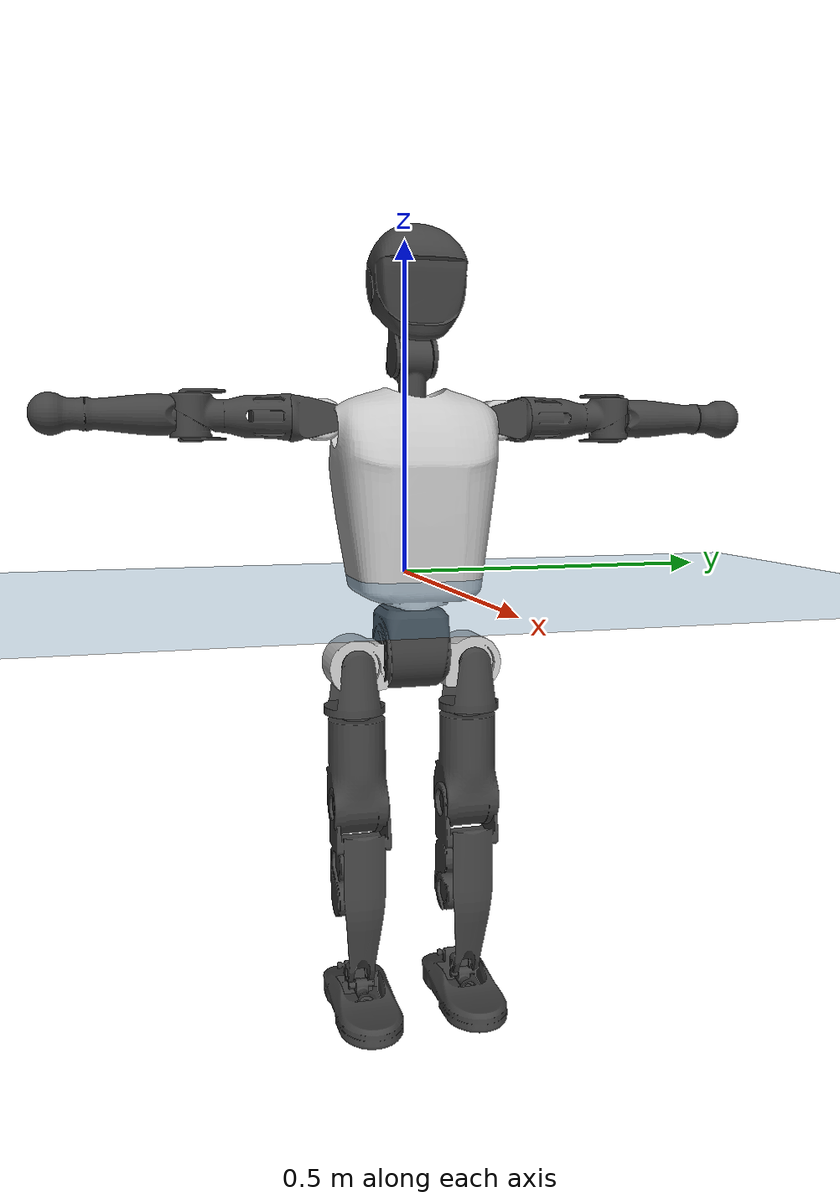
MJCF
<mujoco model="T1">
  <compiler angle="radian" assetdir="assets" balanceinertia="true" inertiafromgeom="false"/>

  <option timestep="0.005" density="1.2" viscosity="2e-05"/>

  <size nkey="1"/>

  <visual>
    <quality shadowsize="8192"/>
    <map shadowclip="0.5"/>
  </visual>

  <default>
    <default class="/">
      <joint armature="0.01" damping="0.01" frictionloss="0.1"/>
      <geom contype="0" conaffinity="0" group="1" solref="-1000 -80"/>
      <site size="0.01 0.005 0.005" group="5"/>
      <general forcelimited="true" biastype="affine" gainprm="25" biasprm="0 -25 -0.6"/>
      <default class="t1">
        <geom rgba="0.25 0.25 0.25 1"/>
        <default class="visual">
          <geom type="mesh" group="2"/>
        </default>
        <default class="collision">
          <geom group="3"/>
        </default>
        <default class="foot">
          <geom size="0.1115 0.05 0.015" type="box" condim="6" group="4" priority="1" solimp="0.015 1 0.015"/>
        </default>
        <default class="reward_collision_sphere">
          <geom group="5" rgba="1 0 0 1"/>
        </default>
      </default>
    </default>
  </default>

  <asset>
    <texture type="skybox" colorspace="auto" name="//unnamed_texture_0" builtin="gradient" rgb1="0.95 0.95 0.95" rgb2="0.95 0.95 0.95" width="100" height="600"/>
    <texture type="2d" colorspace="auto" name="texplane" builtin="checker" rgb1="0.345 0.575 0.748" rgb2="0.345 0.575 0.748" markrgb="1 1 1" width="512" height="512"/>
    <material name="MatPlane" class="/" texture="texplane" texuniform="true" texrepeat="2 2" specular="0.9"/>
    <mesh name="Trunk" class="/" file="Trunk.stl"/>
    <mesh name="H1" class="/" file="H1.stl"/>
    <mesh name="H2" class="/" file="H2.stl"/>
    <mesh name="AL1" class="/" file="AL1.stl"/>
    <mesh name="AL2" class="/" file="AL2.stl"/>
    <mesh name="AL3" class="/" file="AL3.stl"/>
    <mesh name="left_hand_link" class="/" file="left_hand_link.stl"/>
    <mesh name="AR1" class="/" file="AR1.stl"/>
    <mesh name="AR2" class="/" file="AR2.stl"/>
    <mesh name="AR3" class="/" file="AR3.stl"/>
    <mesh name="right_hand_link" class="/" file="right_hand_link.stl"/>
    <mesh name="Waist" class="/" file="Waist.stl"/>
    <mesh name="Hip_Pitch_Left" class="/" file="Hip_Pitch_Left.stl"/>
    <mesh name="Hip_Roll_Left" class="/" file="Hip_Roll_Left.stl"/>
    <mesh name="Hip_Yaw_Left" class="/" file="Hip_Yaw_Left.stl"/>
    <mesh name="Shank_Left" class="/" file="Shank_Left.stl"/>
    <mesh name="Ankle_Cross_Left" class="/" file="Ankle_Cross_Left.stl"/>
    <mesh name="left_foot_link" class="/" file="left_foot_link.stl"/>
    <mesh name="Hip_Pitch_Right" class="/" file="Hip_Pitch_Right.stl"/>
    <mesh name="Hip_Roll_Right" class="/" file="Hip_Roll_Right.stl"/>
    <mesh name="Hip_Yaw_Right" class="/" file="Hip_Yaw_Right.stl"/>
    <mesh name="Shank_Right" class="/" file="Shank_Right.stl"/>
    <mesh name="Ankle_Cross_Right" class="/" file="Ankle_Cross_Right.stl"/>
    <mesh name="right_foot_link" class="/" file="right_foot_link.stl"/>
  </asset>

  <worldbody>
    <geom name="floor" class="/" size="100 100 0.125" type="plane" group="0" material="MatPlane"/>
    <light name="toplight_shadow" class="/" pos="0 0 5" dir="0.0990148 0.0990148 -0.990148" type="directional" ambient="0.04 0.04 0.04" diffuse="0.55 0.55 0.55" specular="0.12 0.12 0.12"/>
    <light name="toplight_fill" class="/" pos="0 0 5" dir="0.0990148 0.0990148 -0.990148" type="directional" castshadow="false" ambient="0.04 0.04 0.04" diffuse="0.3 0.3 0.3" specular="0.08 0.08 0.08"/>
    <body name="trunk" childclass="t1" pos="0.000680408 -0.000739772 0.00059614" quat="0.999999 -3.99926e-05 -0.00115779 -0.000192246">
      <inertial pos="0.0272919 6.47834e-05 0.109334" quat="0.999899 0.000734592 -0.00649964 0.0126507" mass="5.86541" diaginertia="0.0029785 0.0352326 0.0713135"/>
      <joint name="//unnamed_joint_0" type="free" armature="0" damping="0" frictionloss="0"/>
      <geom name="//unnamed_geom_1" class="visual" rgba="0.76 0.76 0.76 1" mesh="Trunk"/>
      <geom name="//unnamed_geom_2" class="collision" size="0.0604453 0.0805938 0.120891" pos="0.0303023 0 0.126777" type="box"/>
      <geom name="//unnamed_geom_3" class="reward_collision_sphere" size="0.0926829" pos="0.0303023 0 0.105648"/>
      <geom name="//unnamed_geom_4" class="reward_collision_sphere" size="0.0120891" pos="0.0303023 0.0727853 0"/>
      <geom name="//unnamed_geom_5" class="reward_collision_sphere" size="0.0120891" pos="0.0303023 -0.0727853 0"/>
      <geom name="//unnamed_geom_6" class="reward_collision_sphere" size="0.0120891" pos="0.0303023 0.0916239 0.190166"/>
      <geom name="//unnamed_geom_7" class="reward_collision_sphere" size="0.0120891" pos="0.0303023 -0.0916239 0.190166"/>
      <site name="imu" pos="0.0133378 -0.0111408 0.000161712" size="0.00805938"/>
      <camera name="track" pos="0 -1.7126 0" quat="0.707107 0.707107 0 0" mode="trackcom"/>
      <camera name="ego_camera" pos="0.0616147 0 0.44372" quat="-0.5 -0.5 0.5 0.5"/>
      <body name="H1" pos="0.0354681 0.00290867 0.260565" quat="0.999999 0.00034661 -0.000669117 0.00107852">
        <inertial pos="-0.0016009 9.98985e-05 0.0586709" quat="0.759608 -0.0254978 0.00491866 0.649863" mass="0.231884" diaginertia="7.99008e-06 0.000107953 0.000200462"/>
        <joint name="AAHead_yaw" pos="0 0 0" axis="-0.0112187 -0.00227546 0.999934" range="-1.57805 1.61985" armature="0.00741371" damping="0.0179149" frictionloss="0.0866972"/>
        <geom name="//unnamed_geom_8" class="visual" mesh="H1"/>
        <body name="H2" pos="0.00185746 0.000156745 0.0646201" quat="1 -0.000261491 -0.000169549 0.000175011">
          <inertial pos="0.0045399 0.00448401 0.104522" quat="0.987315 0.10421 -0.0854535 -0.083944" mass="0.316356" diaginertia="6.27514e-05 0.000849096 0.00224108"/>
          <joint name="Head_pitch" pos="0 0 0" axis="0.000158718 -1 0.000253041" range="-1.16934 0.357123" armature="0.00823405" damping="0.012459" frictionloss="0.080323"/>
          <geom name="//unnamed_geom_9" class="visual" mesh="H2"/>
          <geom name="//unnamed_geom_10" class="collision" size="0.064475" pos="0.00505039 0 0.116212"/>
          <geom name="//unnamed_geom_11" class="reward_collision_sphere" size="0.0725344" pos="0.0101008 0 0.105648"/>
        </body>
      </body>
      <body name="AL1" pos="0.0321349 0.088735 0.232747" quat="1 -0.000103332 0.000443883 0.000178149">
        <inertial pos="0.00293936 0.0358035 0.000411531" quat="0.497362 0.498116 -0.513785 0.490445" mass="0.289295" diaginertia="4.64412e-05 0.000617388 0.000394604"/>
        <joint name="Left_Shoulder_Pitch" pos="0 0 0" axis="-0.00229892 0.999996 -0.00185794" range="-3.26517 1.20767" armature="0.00837634" damping="0.00915015" frictionloss="0.0788421"/>
        <geom name="//unnamed_geom_12" class="visual" rgba="0.76 0.76 0.76 1" mesh="AL1"/>
        <body name="AL2" pos="0.00399657 0.0388613 0.000852582" quat="0.999999 0.0010715 -0.000673301 1.73818e-05">
          <inertial pos="0.00321157 0.029701 0.00161302" quat="0.487683 0.511744 -0.488424 0.511592" mass="0.0816875" diaginertia="1.26993e-05 0.000147292 0.000222592"/>
          <joint name="Left_Shoulder_Roll" pos="0 0 0" axis="-0.999946 0.00788303 -0.00684168" range="-1.56002 1.77217" armature="0.00820366" damping="0" frictionloss="0.0741558"/>
          <geom name="//unnamed_geom_13" class="visual" mesh="AL2"/>
          <body name="AL3" pos="-0.00256931 0.052077 0.00222606" quat="1 -0.000378212 0.000373922 -8.87977e-05">
            <inertial pos="0.000995556 0.0756976 -0.000742262" quat="0.706086 0.708119 0.00218924 -0.00232782" mass="0.536566" diaginertia="0.000431721 0.00609056 0.00084579"/>
            <joint name="Left_Elbow_Pitch" pos="0 0 0" axis="0.00793185 -0.999954 0.00540365" range="-2.29771 2.24743" armature="0.00867683" damping="0" frictionloss="0.082329"/>
            <geom name="//unnamed_geom_14" class="visual" mesh="AL3"/>
            <geom name="//unnamed_geom_15" class="collision" size="0.0241781 0.0604453" pos="0 0.0428149 0" quat="0.707105 0.707108 0 0" type="cylinder"/>
            <geom name="//unnamed_geom_16" class="reward_collision_sphere" size="0.0290138"/>
            <body name="left_hand_link" pos="0.00303652 0.12687 0.000506777" quat="1 0.00012361 1.42848e-05 5.14022e-06">
              <inertial pos="-0.00422608 0.0950094 -0.00156566" quat="0.71591 0.698178 0.001912 0.00414143" mass="0.16659" diaginertia="0.000261924 0.00366734 0.000284647"/>
              <joint name="Left_Elbow_Yaw" pos="0 0 0" axis="0.00148179 0.00153553 0.999998" stiffness="0.00938392" range="-2.40853 -0.0218366" armature="0.00795721" damping="0.00868344" frictionloss="0.0784116"/>
              <geom name="//unnamed_geom_17" class="visual" mesh="left_hand_link"/>
              <geom name="//unnamed_geom_18" class="collision" size="0.0241781 0.0705196" pos="0 0.111319 0" quat="0.707105 0.707108 0 0" type="cylinder"/>
              <geom name="//unnamed_geom_19" class="reward_collision_sphere" size="0.0402969"/>
              <geom name="//unnamed_geom_20" class="reward_collision_sphere" size="0.0282078" pos="0 0.0941927 0"/>
              <geom name="//unnamed_geom_21" class="reward_collision_sphere" size="0.0282078" pos="0 0.184104 0"/>
            </body>
          </body>
        </body>
      </body>
      <body name="AR1" pos="0.0248326 -0.0888803 0.232232" quat="1 -0.000451813 0.000674386 -0.000488596">
        <inertial pos="0.00125054 -0.036162 0.0001635" quat="0.503676 0.49498 -0.504214 0.497064" mass="0.275304" diaginertia="4.37934e-05 0.000606162 0.000387392"/>
        <joint name="Right_Shoulder_Pitch" pos="0 0 0" axis="-0.00383715 -0.999982 0.00457218" range="-1.21784 3.36103" armature="0.0082149" damping="0.0212841" frictionloss="0.0752789"/>
        <geom name="//unnamed_geom_22" class="visual" rgba="0.76 0.76 0.76 1" mesh="AR1"/>
        <body name="AR2" pos="-0.00402323 -0.0375162 0.00205194" quat="1 -0.000196466 -2.30393e-05 -0.00074278">
          <inertial pos="0.000466291 -0.032894 0.00307609" quat="0.508795 0.488577 -0.509597 0.492678" mass="0.0836216" diaginertia="1.32477e-05 0.000166325 0.000240806"/>
          <joint name="Right_Shoulder_Roll" pos="0 0 0" axis="-0.999895 -0.0124166 0.00741658" stiffness="0.0123561" range="-1.80986 1.53253" armature="0.00879945" damping="0" frictionloss="0.0797755"/>
          <geom name="//unnamed_geom_23" class="visual" mesh="AR2"/>
          <body name="AR3" pos="-0.00321469 -0.0511771 0.00204551" quat="1 -0.000159653 3.44008e-05 -0.000322394">
            <inertial pos="0.00229398 -0.0707078 -8.21528e-05" quat="0.708977 0.705188 -0.00523994 -0.00577222" mass="0.529935" diaginertia="0.000406551 0.00585436 0.00078082"/>
            <joint name="Right_Elbow_Pitch" pos="0 0 0" axis="-0.00494862 0.999965 -0.0067013" stiffness="0.00598268" range="-2.26903 2.25221" armature="0.00836024" damping="0" frictionloss="0.0907101"/>
            <geom name="//unnamed_geom_24" class="visual" mesh="AR3"/>
            <geom name="//unnamed_geom_25" class="collision" size="0.0241781 0.0604453" pos="0 -0.0428149 0" quat="0.707105 0.707108 0 0" type="cylinder"/>
            <geom name="//unnamed_geom_26" class="reward_collision_sphere" size="0.0290138"/>
            <body name="right_hand_link" pos="0.000587219 -0.12464 0.00135872" quat="1 -1.9641e-05 -6.2091e-05 -0.000140374">
              <inertial pos="-0.000959594 -0.0960459 -0.000730197" quat="0.706361 0.707852 0.000236407 0.00014308" mass="0.168634" diaginertia="0.000269896 0.00373488 0.00026885"/>
              <joint name="Right_Elbow_Yaw" pos="0 0 0" axis="-0.000970274 -0.00597444 0.999982" range="0.0246323 2.38676" armature="0.00765879" damping="0" frictionloss="0.0887048"/>
              <geom name="//unnamed_geom_27" class="visual" mesh="right_hand_link"/>
              <geom name="//unnamed_geom_28" class="collision" size="0.0241781 0.0705196" pos="0 -0.111319 0" quat="0.707105 0.707108 0 0" type="cylinder"/>
              <geom name="//unnamed_geom_29" class="reward_collision_sphere" size="0.0402969"/>
              <geom name="//unnamed_geom_30" class="reward_collision_sphere" size="0.0282078" pos="0 -0.0941927 0"/>
              <geom name="//unnamed_geom_31" class="reward_collision_sphere" size="0.0282078" pos="0 -0.184104 0"/>
            </body>
          </body>
        </body>
      </body>
      <body name="Waist" pos="0.031087 0.00102485 -0.119045" quat="0.999999 -9.84722e-05 -0.000355037 -0.00115199">
        <inertial pos="-0.000930194 -0.00063717 0.00736882" quat="0.984521 -0.00286659 -0.175241 -0.00105839" mass="1.33164" diaginertia="0.000165919 0.00248807 0.0058642"/>
        <joint name="Waist" pos="0 0 0" axis="0.00119749 6.23443e-05 0.999999" range="-1.59192 1.54424" armature="0.00772066" damping="0.020749" frictionloss="0.0884654"/>
        <geom name="//unnamed_geom_32" class="visual" mesh="Waist"/>
        <body name="Hip_Pitch_Left" pos="0.000963862 0.0934354 -0.00253941" quat="1 -8.30381e-05 -9.51227e-05 0.000245265">
          <inertial pos="-0.000742526 -0.00571245 -0.0169595" quat="0.973588 0.227543 0.0184769 -0.00314016" mass="0.525754" diaginertia="5.79029e-05 0.000660652 0.00158679"/>
          <joint name="Left_Hip_Pitch" pos="0 0 0" axis="0.0039656 0.999862 -0.0161379" stiffness="0.00702096" range="-1.84997 1.57943" armature="0.00820772" damping="0.00313233" frictionloss="0.079025"/>
          <geom name="//unnamed_geom_33" class="visual" rgba="0.76 0.76 0.76 1" mesh="Hip_Pitch_Left"/>
          <body name="Hip_Roll_Left" pos="-0.00197032 0.00214178 -0.019998" quat="1 -1.12265e-05 -0.000817047 2.34088e-05">
            <inertial pos="0.00155443 -0.000241091 -0.0568919" quat="0.707055 -0.00603373 -0.00592263 0.707108" mass="0.211273" diaginertia="6.22727e-05 0.00072445 0.000723778"/>
            <joint name="Left_Hip_Roll" pos="0 0 0" axis="-0.999978 0.00431711 0.00496272" stiffness="0.00944325" range="-1.62191 0.172953" armature="0.00743014" damping="0.00382317" frictionloss="0.0712439"/>
            <geom name="//unnamed_geom_34" class="visual" mesh="Hip_Roll_Left"/>
            <geom name="//unnamed_geom_35" class="reward_collision_sphere" size="0.0443266"/>
            <body name="Hip_Yaw_Left" pos="0.00200603 -0.00272194 -0.0853565" quat="1 -0.000553374 -0.000617671 0.000428052">
              <inertial pos="-0.000651282 -0.0037227 -0.0969928" quat="0.694652 -0.0304392 -0.019402 0.71844" mass="1.10268" diaginertia="0.000795172 0.0113014 0.00334876"/>
              <joint name="Left_Hip_Yaw" pos="0 0 0" axis="0.0126479 0.0042347 -0.999911" stiffness="0.0150728" range="-1.06857 0.97537" armature="0.00808432" damping="0.0171445" frictionloss="0.0771179"/>
              <geom name="//unnamed_geom_36" class="visual" mesh="Hip_Yaw_Left"/>
              <geom name="//unnamed_geom_37" class="collision" size="0.0402969 0.064475" type="cylinder"/>
              <body name="Shank_Left" pos="-0.00340821 -0.00184472 -0.14447" quat="1 -0.000132932 -0.000197395 7.44482e-05">
                <inertial pos="0.000243611 0.00256198 -0.128723" quat="0.997148 0.0178503 -0.0248359 0.0689891" mass="0.890378" diaginertia="0.00113897 0.0150479 0.00245509"/>
                <joint name="Left_Knee_Pitch" pos="0 0 0" axis="-0.00144526 0.999981 0.00590855" range="-0.019018 2.33622" armature="0.00804182" damping="0.0218329" frictionloss="0.0695303"/>
                <geom name="//unnamed_geom_38" class="visual" mesh="Shank_Left"/>
                <geom name="//unnamed_geom_39" class="collision" size="0.0402969 0.0604453" pos="0 0 -0.126777" type="cylinder"/>
                <geom name="//unnamed_geom_40" class="reward_collision_sphere" size="0.052386"/>
                <body name="Ankle_Cross_Left" pos="0.00112919 -0.00285731 -0.29353" quat="1 0.000469937 0.000264061 0.000301864">
                  <inertial pos="-0.00258457 0.0022789 -0.00992618" quat="0.448033 0.547786 0.547566 0.446506" mass="0.0388829" diaginertia="9.95216e-07 1.197e-05 1.56812e-05"/>
                  <joint name="Left_Ankle_Pitch" pos="0 0 0" axis="0.00143882 0.999999 -0.000160441" range="-0.860201 0.339184" armature="0.00666838" damping="0" frictionloss="0.0722777"/>
                  <geom name="//unnamed_geom_41" class="visual" mesh="Ankle_Cross_Left"/>
                  <body name="left_foot_link" pos="-0.00312715 0.00183577 -0.0150083" quat="1 -5.71751e-05 -1.18483e-05 0.000120233">
                    <inertial pos="0.00264016 0.000547261 -0.00942984" quat="-0.00585045 0.624997 -0.00590742 0.780583" mass="0.354356" diaginertia="9.03529e-05 0.00115522 0.00297738"/>
                    <joint name="Left_Ankle_Roll" pos="0 0 0" axis="-1 -0.000336918 0.000262136" stiffness="0.0106138" range="-0.413704 0.404242" armature="0.00826964" damping="0.0280936" frictionloss="0.0722972"/>
                    <geom name="//unnamed_geom_42" class="visual" mesh="left_foot_link"/>
                    <geom name="left_foot" class="foot" size="0.0908604 0.0453022 0.0114238" pos="0.00505039 0 -0.0158472"/>
                    <geom name="//unnamed_geom_44" class="reward_collision_sphere" size="0.0419088" pos="0.00505039 0 -0.0158472"/>
                    <geom name="//unnamed_geom_45" class="reward_collision_sphere" size="0.0241781" pos="0.0479787 -0.0196948 -0.0158472"/>
                    <geom name="//unnamed_geom_46" class="reward_collision_sphere" size="0.0241781" pos="-0.0353527 -0.0196948 -0.0158472"/>
                    <site name="left_foot" class="foot" pos="0.00505039 0 -0.0158472" size="0.00805938"/>
                  </body>
                </body>
              </body>
            </body>
          </body>
        </body>
        <body name="Hip_Pitch_Right" pos="-0.00141553 -0.0900377 -0.000835984" quat="1 -9.27396e-06 -8.55575e-06 -7.91555e-06">
          <inertial pos="-0.00164067 0.00596729 -0.0177726" quat="0.974948 -0.221615 0.0117382 -0.0149842" mass="0.54483" diaginertia="6.14109e-05 0.000653473 0.00168165"/>
          <joint name="Right_Hip_Pitch" pos="0 0 0" axis="-0.00915341 -0.999947 -0.00462389" range="-1.48467 1.74047" armature="0.0084558" damping="0.00362478" frictionloss="0.0905106"/>
          <geom name="//unnamed_geom_47" class="visual" rgba="0.76 0.76 0.76 1" mesh="Hip_Pitch_Right"/>
          <body name="Hip_Roll_Right" pos="-0.00300157 0.000693253 -0.018557" quat="1 5.24269e-06 0.000126387 0.00015721">
            <inertial pos="-0.00152607 9.30733e-05 -0.0573659" quat="0.697958 -0.0032281 -0.00694821 0.716097" mass="0.203612" diaginertia="5.81563e-05 0.000683733 0.000664972"/>
            <joint name="Right_Hip_Roll" pos="0 0 0" axis="-0.999913 0.0131582 -6.30637e-05" range="-0.210734 1.51638" armature="0.00764482" damping="0.0173091" frictionloss="0.090468"/>
            <geom name="//unnamed_geom_48" class="visual" mesh="Hip_Roll_Right"/>
            <geom name="//unnamed_geom_49" class="reward_collision_sphere" size="0.0443266"/>
            <body name="Hip_Yaw_Right" pos="0.00386181 0.00248807 -0.0857117" quat="1 -0.000508829 0.000373915 0.000396774">
              <inertial pos="-0.00182019 -0.00237599 -0.0954742" quat="0.717723 -0.0132807 -0.0282407 0.695629" mass="1.13325" diaginertia="0.000837868 0.0113815 0.00323858"/>
              <joint name="Right_Hip_Yaw" pos="0 0 0" axis="0.00174685 -0.00377445 -0.999991" range="-1.05514 1.05847" armature="0.00711109" damping="0" frictionloss="0.0806473"/>
              <geom name="//unnamed_geom_50" class="visual" mesh="Hip_Yaw_Right"/>
              <geom name="//unnamed_geom_51" class="collision" size="0.0402969 0.064475" type="cylinder"/>
              <body name="Shank_Right" pos="-0.00350373 0.00287474 -0.142051" quat="1 -0.000127907 -8.56045e-05 -4.20982e-05">
                <inertial pos="0.000258425 -0.004543 -0.131602" quat="0.999353 -0.000484255 -0.0201363 -0.0297945" mass="0.952292" diaginertia="0.00120272 0.0165191 0.00259501"/>
                <joint name="Right_Knee_Pitch" pos="0 0 0" axis="0.00783924 -0.999882 0.0131805" stiffness="0.00287798" range="-2.37248 0.00559404" armature="0.00829329" damping="0.0251367" frictionloss="0.0723381"/>
                <geom name="//unnamed_geom_52" class="visual" mesh="Shank_Right"/>
                <geom name="//unnamed_geom_53" class="collision" size="0.0402969 0.0604453" pos="0 0 -0.126777" type="cylinder"/>
                <geom name="//unnamed_geom_54" class="reward_collision_sphere" size="0.052386"/>
                <body name="Ankle_Cross_Right" pos="0.00305896 0.0015163 -0.297858" quat="1 7.60993e-05 -0.000512668 -0.000297137">
                  <inertial pos="-0.00440297 0.00105183 -0.00580765" quat="0.45057 0.539974 0.553086 0.446667" mass="0.0375822" diaginertia="9.42985e-07 1.25901e-05 1.52412e-05"/>
                  <joint name="Right_Ankle_Pitch" pos="0 0 0" axis="-9.99528e-05 -1 -0.00018761" stiffness="0.0111703" range="-0.312205 0.871979" armature="0.00820206" damping="0.0198873" frictionloss="0.0813248"/>
                  <geom name="//unnamed_geom_55" class="visual" mesh="Ankle_Cross_Right"/>
                  <body name="right_foot_link" pos="0.00371212 0.000144724 -0.0145763" quat="1 5.72905e-08 9.31585e-05 -2.18618e-05">
                    <inertial pos="-0.0024498 0.00204602 -0.0113567" quat="-0.00140482 0.618554 -0.00462572 0.785727" mass="0.348152" diaginertia="8.73522e-05 0.00113625 0.00287648"/>
                    <joint name="Right_Ankle_Roll" pos="0 0 0" axis="-0.999999 -0.00111968 0.000374531" range="-0.434132 0.422091" armature="0.00727133" damping="0" frictionloss="0.0780916"/>
                    <geom name="//unnamed_geom_56" class="visual" mesh="right_foot_link"/>
                    <geom name="right_foot" class="foot" size="0.106364 0.0449932 0.0132902" pos="0.00505039 0 -0.0158472"/>
                    <geom name="//unnamed_geom_58" class="reward_collision_sphere" size="0.0322375"/>
                    <geom name="//unnamed_geom_59" class="reward_collision_sphere" size="0.0241781" pos="0.00505039 0 -0.0158472"/>
                    <geom name="//unnamed_geom_60" class="reward_collision_sphere" size="0.0241781" pos="0.0479787 0.0196948 -0.0158472"/>
                    <geom name="//unnamed_geom_61" class="reward_collision_sphere" size="0.0241781" pos="-0.0353527 0.0196948 -0.0158472"/>
                    <site name="right_foot" class="foot" pos="0.00505039 0 -0.0158472" size="0.00805938"/>
                  </body>
                </body>
              </body>
            </body>
          </body>
        </body>
      </body>
    </body>
  </worldbody>

  <contact>
    <pair class="/" geom1="floor" geom2="left_foot" name="//unnamed_contact_0"/>
    <pair class="/" geom1="floor" geom2="right_foot" name="//unnamed_contact_1"/>
  </contact>

  <actuator>
    <general name="AAHead_yaw" class="/" joint="AAHead_yaw" forcerange="-5.72099 5.72099" gainprm="21.7835" biasprm="0 -21.7835 -0.488136"/>
    <general name="Head_pitch" class="/" joint="Head_pitch" forcerange="-6.15471 6.15471" gainprm="21.7835" biasprm="0 -21.7835 -0.488136"/>
    <general name="Left_Shoulder_Pitch" class="/" joint="Left_Shoulder_Pitch" forcerange="-15.0279 15.0279" gainprm="21.7835" biasprm="0 -21.7835 -0.488136"/>
    <general name="Left_Shoulder_Roll" class="/" joint="Left_Shoulder_Roll" forcerange="-14.2339 14.2339" gainprm="21.7835" biasprm="0 -21.7835 -0.488136"/>
    <general name="Left_Elbow_Pitch" class="/" joint="Left_Elbow_Pitch" forcerange="-14.5066 14.5066" gainprm="21.7835" biasprm="0 -21.7835 -0.488136"/>
    <general name="Left_Elbow_Yaw" class="/" joint="Left_Elbow_Yaw" forcerange="-15.3301 15.3301" gainprm="21.7835" biasprm="0 -21.7835 -0.488136"/>
    <general name="Right_Shoulder_Pitch" class="/" joint="Right_Shoulder_Pitch" forcerange="-13.3792 13.3792" gainprm="21.7835" biasprm="0 -21.7835 -0.488136"/>
    <general name="Right_Shoulder_Roll" class="/" joint="Right_Shoulder_Roll" forcerange="-13.1263 13.1263" gainprm="21.7835" biasprm="0 -21.7835 -0.488136"/>
    <general name="Right_Elbow_Pitch" class="/" joint="Right_Elbow_Pitch" forcerange="-14.4858 14.4858" gainprm="21.7835" biasprm="0 -21.7835 -0.488136"/>
    <general name="Right_Elbow_Yaw" class="/" joint="Right_Elbow_Yaw" forcerange="-15.8671 15.8671" gainprm="21.7835" biasprm="0 -21.7835 -0.488136"/>
    <general name="Waist" class="/" joint="Waist" forcerange="-22.2895 22.2895" gainprm="21.7835" biasprm="0 -21.7835 -0.488136"/>
    <general name="Left_Hip_Pitch" class="/" joint="Left_Hip_Pitch" forcerange="-36.7098 36.7098" gainprm="21.7835" biasprm="0 -21.7835 -0.488136"/>
    <general name="Left_Hip_Roll" class="/" joint="Left_Hip_Roll" forcerange="-26.3218 26.3218" gainprm="21.7835" biasprm="0 -21.7835 -0.488136"/>
    <general name="Left_Hip_Yaw" class="/" joint="Left_Hip_Yaw" forcerange="-24.3074 24.3074" gainprm="21.7835" biasprm="0 -21.7835 -0.488136"/>
    <general name="Left_Knee_Pitch" class="/" joint="Left_Knee_Pitch" forcerange="-51.6752 51.6752" gainprm="21.7835" biasprm="0 -21.7835 -0.488136"/>
    <general name="Left_Ankle_Pitch" class="/" joint="Left_Ankle_Pitch" forcerange="-15.0957 15.0957" gainprm="21.7835" biasprm="0 -21.7835 -0.488136"/>
    <general name="Left_Ankle_Roll" class="/" joint="Left_Ankle_Roll" forcerange="-12.0256 12.0256" gainprm="21.7835" biasprm="0 -21.7835 -0.488136"/>
    <general name="Right_Hip_Pitch" class="/" joint="Right_Hip_Pitch" forcerange="-35.1038 35.1038" gainprm="21.7835" biasprm="0 -21.7835 -0.488136"/>
    <general name="Right_Hip_Roll" class="/" joint="Right_Hip_Roll" forcerange="-22.1625 22.1625" gainprm="21.7835" biasprm="0 -21.7835 -0.488136"/>
    <general name="Right_Hip_Yaw" class="/" joint="Right_Hip_Yaw" forcerange="-21.8962 21.8962" gainprm="21.7835" biasprm="0 -21.7835 -0.488136"/>
    <general name="Right_Knee_Pitch" class="/" joint="Right_Knee_Pitch" forcerange="-49.0165 49.0165" gainprm="21.7835" biasprm="0 -21.7835 -0.488136"/>
    <general name="Right_Ankle_Pitch" class="/" joint="Right_Ankle_Pitch" forcerange="-17.083 17.083" gainprm="21.7835" biasprm="0 -21.7835 -0.488136"/>
    <general name="Right_Ankle_Roll" class="/" joint="Right_Ankle_Roll" forcerange="-13.2726 13.2726" gainprm="21.7835" biasprm="0 -21.7835 -0.488136"/>
  </actuator>

  <sensor>
    <gyro site="imu" name="imu_angular_velocity"/>
    <velocimeter site="imu" name="imu_linear_velocity"/>
    <framelinvel objtype="site" objname="left_foot" name="left_foot_global_linear_velocity"/>
    <framelinvel objtype="site" objname="right_foot" name="right_foot_global_linear_velocity"/>
  </sensor>

  <keyframe>
    <key name="home" qpos="0 0 0.6385 1 0 0 0 0 0 0 1.4 0 -0.4 0 -1.4 0 0.4 0 -0.4 0 0 0.8 -0.4 0 0.4 0 0 -0.8 0.4 0"/>
  </keyframe>
</mujoco>
